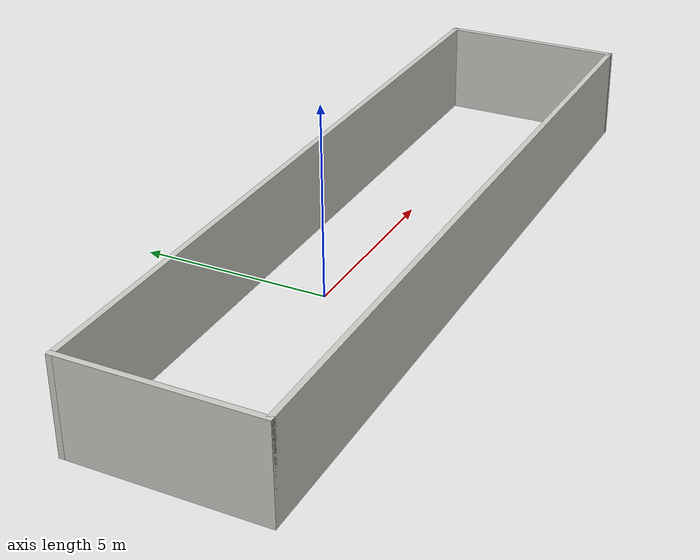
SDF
<?xml version='1.0'?>
<sdf version='1.7'>
  <model name='hallway'>
    <pose>2.14958 -0.618519 0 0 -0 0</pose>
    <link name='Wall_12'>
      <collision name='Wall_12_Collision'>
        <geometry>
          <box>
            <size>5 0.15 2.5</size>
          </box>
        </geometry>
        <pose>0 0 1.25 0 -0 0</pose>
      </collision>
      <visual name='Wall_12_Visual'>
        <pose>0 0 1.25 0 -0 0</pose>
        <geometry>
          <box>
            <size>5 0.15 2.5</size>
          </box>
        </geometry>
        <material>
          <script>
            <uri>file://media/materials/scripts/gazebo.material</uri>
            <name>Gazebo/CeilingTiled</name>
          </script>
          <ambient>1 1 1 1</ambient>
        </material>
        <meta>
          <layer>0</layer>
        </meta>
      </visual>
      <pose>9.925 -0 0 0 -0 1.5708</pose>
    </link>
    <link name='Wall_13'>
      <collision name='Wall_13_Collision'>
        <geometry>
          <box>
            <size>20 0.15 2.5</size>
          </box>
        </geometry>
        <pose>0 0 1.25 0 -0 0</pose>
      </collision>
      <visual name='Wall_13_Visual'>
        <pose>0 0 1.25 0 -0 0</pose>
        <geometry>
          <box>
            <size>20 0.15 2.5</size>
          </box>
        </geometry>
        <material>
          <script>
            <uri>file://media/materials/scripts/gazebo.material</uri>
            <name>Gazebo/CeilingTiled</name>
          </script>
          <ambient>1 1 1 1</ambient>
        </material>
        <meta>
          <layer>0</layer>
        </meta>
      </visual>
      <pose>0 2.425 0 0 -0 3.14159</pose>
    </link>
    <link name='Wall_14'>
      <collision name='Wall_14_Collision'>
        <geometry>
          <box>
            <size>5 0.15 2.5</size>
          </box>
        </geometry>
        <pose>0 0 1.25 0 -0 0</pose>
      </collision>
      <visual name='Wall_14_Visual'>
        <pose>0 0 1.25 0 -0 0</pose>
        <geometry>
          <box>
            <size>5 0.15 2.5</size>
          </box>
        </geometry>
        <material>
          <script>
            <uri>file://media/materials/scripts/gazebo.material</uri>
            <name>Gazebo/CeilingTiled</name>
          </script>
          <ambient>1 1 1 1</ambient>
        </material>
        <meta>
          <layer>0</layer>
        </meta>
      </visual>
      <pose>-9.925 -0 0 0 -0 -1.5708</pose>
    </link>
    <link name='Wall_6'>
      <collision name='Wall_6_Collision'>
        <geometry>
          <box>
            <size>20 0.15 2.5</size>
          </box>
        </geometry>
        <pose>0 0 1.25 0 -0 0</pose>
      </collision>
      <visual name='Wall_6_Visual'>
        <pose>0 0 1.25 0 -0 0</pose>
        <geometry>
          <box>
            <size>20 0.15 2.5</size>
          </box>
        </geometry>
        <material>
          <script>
            <uri>file://media/materials/scripts/gazebo.material</uri>
            <name>Gazebo/CeilingTiled</name>
          </script>
          <ambient>1 1 1 1</ambient>
        </material>
        <meta>
          <layer>0</layer>
        </meta>
      </visual>
      <pose>0 -2.425 0 0 -0 0</pose>
    </link>
    <static>1</static>
  </model>
</sdf>
